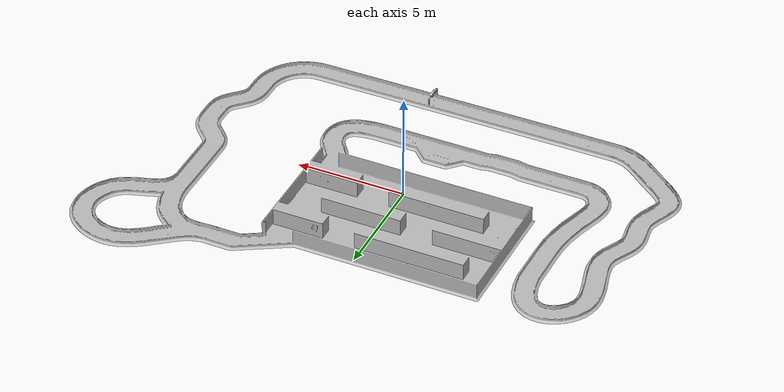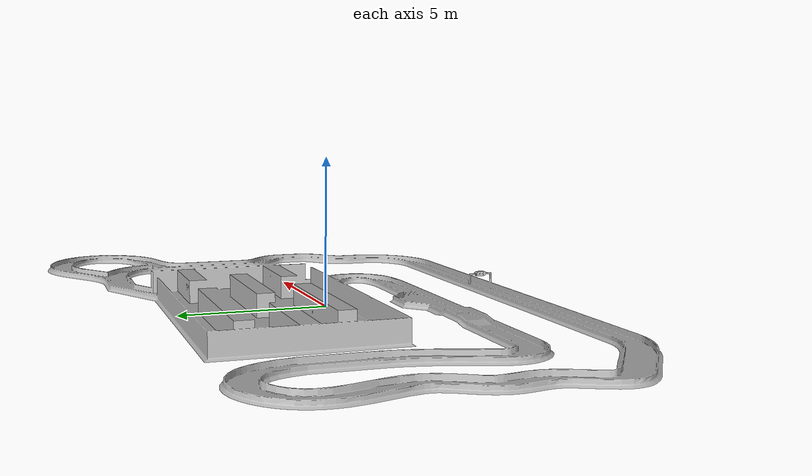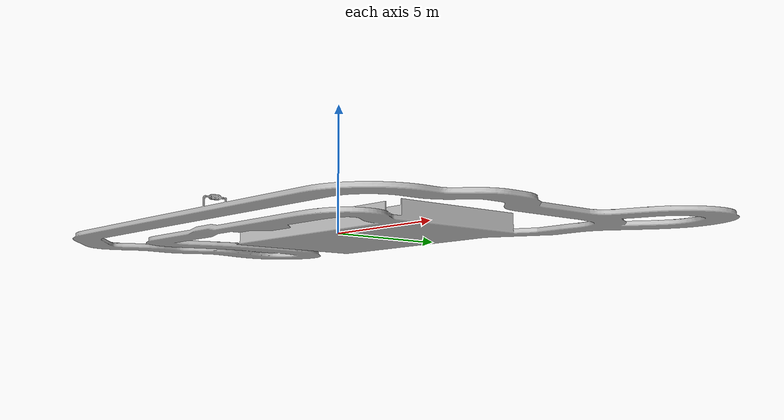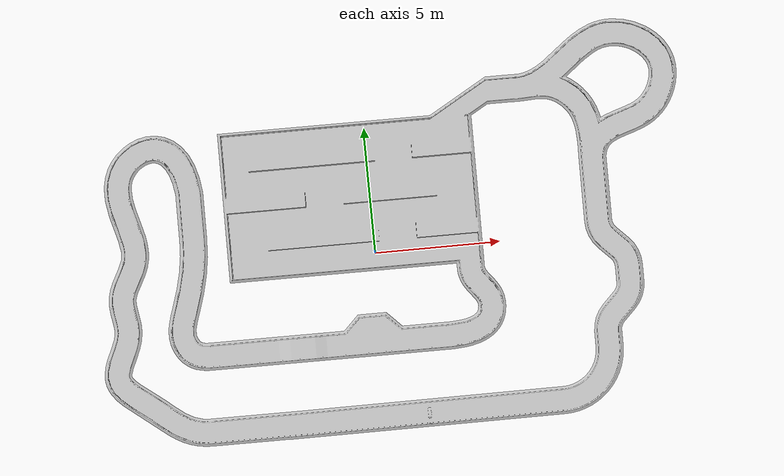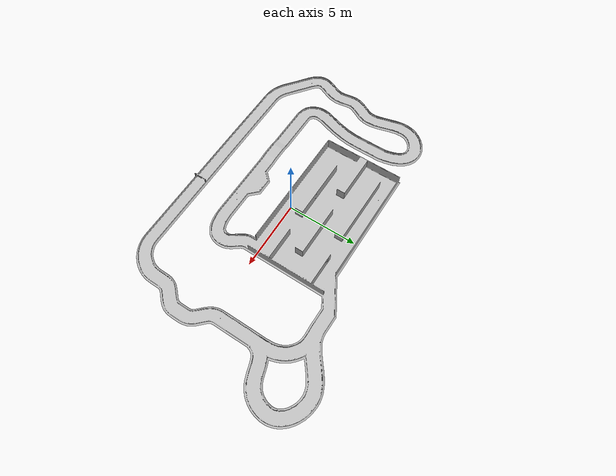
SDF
<?xml version='1.0'?>
<sdf version='1.6'>
  <model name='track_v1'>
    <link name='base_link'>
      <pose frame=''>0 0 0 0 -0 0</pose>
      <inertial>
        <pose frame=''>-0.183042 0.56704 0.087598 0 -0 0</pose>
        <mass>45621</mass>
        <inertia>
          <ixx>1.06399e+06</ixx>
          <ixy>13503.8</ixy>
          <ixz>1791.82</ixz>
          <iyy>2.33664e+06</iyy>
          <iyz>-5533.51</iyz>
          <izz>3.39693e+06</izz>
        </inertia>
      </inertial>
      <collision name='base_link_fixed_joint_lump__track_link_collision'>
        <pose frame=''>0 0 0 0 -0 0</pose>
        <geometry>
          <mesh>
            <scale>1 1 1</scale>
            <uri>model://track_v1/meshes/track_link.STL</uri>
          </mesh>
        </geometry>
      </collision>
      <visual name='base_link_fixed_joint_lump__track_link_visual'>
        <pose frame=''>0 0 0 0 -0 0</pose>
        <geometry>
          <mesh>
            <scale>1 1 1</scale>
            <uri>model://track_v1/meshes/track.dae</uri>
          </mesh>
        </geometry>
      </visual>
    </link>
  </model>
</sdf>
